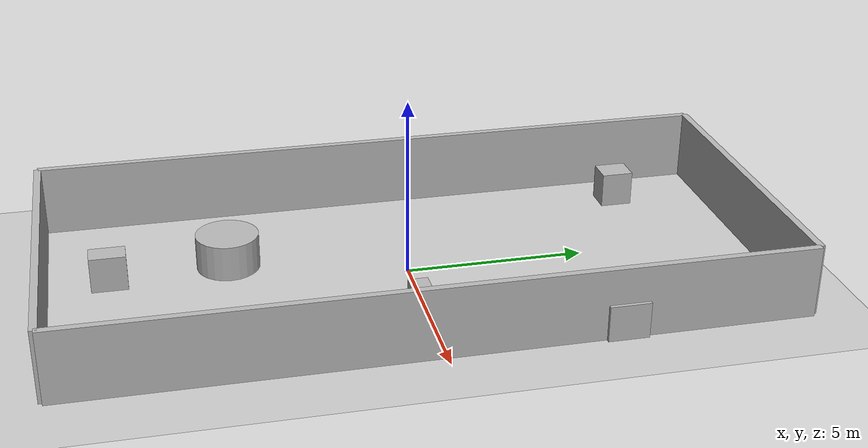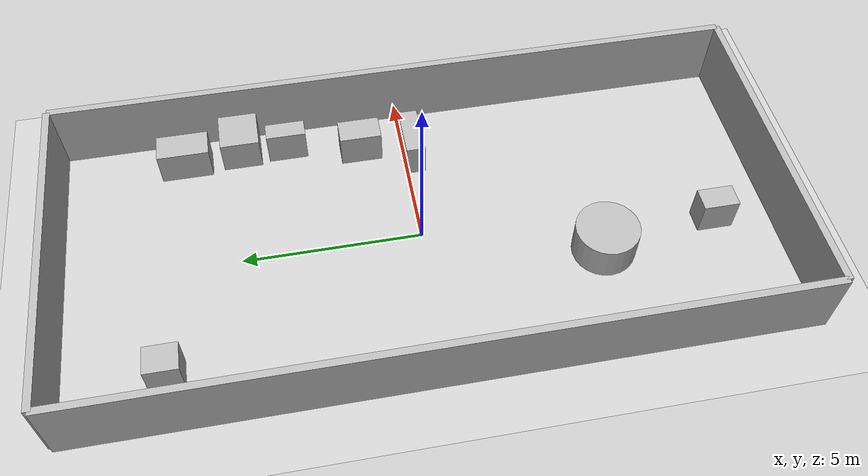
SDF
<?xml version="1.0"?>
<sdf version="1.6">
  <world name="env_78">

    <include><uri>model://ground_plane</uri></include>
    <include><uri>model://sun</uri></include>

    <!-- WALLS -->
    <model name="wall_north"><static>true</static><pose>0 9.871826061096836 1 0 0 0</pose>
      <link name="link"><collision name="collision">
        <geometry><box><size>9.239647370672266 0.2 2</size></box></geometry>
      </collision><visual name="visual">
        <geometry><box><size>9.239647370672266 0.2 2</size></box></geometry>
      </visual></link>
    </model>

    <model name="wall_south"><static>true</static><pose>0 -9.871826061096836 1 0 0 0</pose>
      <link name="link"><collision name="collision">
        <geometry><box><size>9.239647370672266 0.2 2</size></box></geometry>
      </collision><visual name="visual">
        <geometry><box><size>9.239647370672266 0.2 2</size></box></geometry>
      </visual></link>
    </model>

    <model name="wall_east"><static>true</static><pose>4.619823685336133 0 1 0 0 1.57</pose>
      <link name="link"><collision name="collision">
        <geometry><box><size>19.743652122193673 0.2 2</size></box></geometry>
      </collision><visual name="visual">
        <geometry><box><size>19.743652122193673 0.2 2</size></box></geometry>
      </visual></link>
    </model>

    <model name="wall_west"><static>true</static><pose>-4.619823685336133 0 1 0 0 1.57</pose>
      <link name="link"><collision name="collision">
        <geometry><box><size>19.743652122193673 0.2 2</size></box></geometry>
      </collision><visual name="visual">
        <geometry><box><size>19.743652122193673 0.2 2</size></box></geometry>
      </visual></link>
    </model>

    <!-- SENSOR -->

    <model name="lidar_sensor">
      <static>true</static>
      <pose>-2.9495026379560123 -7.817254220760039 0.4 0 0 0</pose>
      <link name="link">
        <sensor name="lidar" type="ray">
          <pose>0 0 0 0 0 0</pose>
          <visualize>true</visualize>
          <always_on>true</always_on>
          <update_rate>10</update_rate>
          <ray>
            <scan><horizontal>
              <samples>90</samples>
              <resolution>1</resolution>
              <min_angle>-3.14159</min_angle>
              <max_angle>3.14159</max_angle>
            </horizontal></scan>
            <range><min>0.15</min><max>20.0</max><resolution>0.01</resolution></range>
          </ray>
          <plugin name="lidar_plugin" filename="liblidar_plugin.so"/>
        </sensor>
      </link>
    </model>

    <!-- OBSTACLES -->

    <model name="obstacle_0">
      <static>true</static>
      <pose>3.02475850724763 -0.2435227063174139 0.5 0 0 0</pose>
      <link name="link">
        <collision name="collision">
          <geometry><box><size>1.5 0.54 1.0</size></box></geometry>
        </collision>
        <visual name="visual">
          <geometry><box><size>1.5 0.54 1.0</size></box></geometry>
        </visual>
      </link>
    </model>

    <model name="obstacle_1">
      <static>true</static>
      <pose>-0.9077267735363872 -8.12124651180792 0.5 0 0 0</pose>
      <link name="link">
        <collision name="collision">
          <geometry><box><size>0.65 1.0 1.0</size></box></geometry>
        </collision>
        <visual name="visual">
          <geometry><box><size>0.65 1.0 1.0</size></box></geometry>
        </visual>
      </link>
    </model>

    <model name="obstacle_2">
      <static>true</static>
      <pose>3.646399349671464 6.327479704168708 0.5 0 0 0</pose>
      <link name="link">
        <collision name="collision">
          <geometry><box><size>0.81 1.46 1.0</size></box></geometry>
        </collision>
        <visual name="visual">
          <geometry><box><size>0.81 1.46 1.0</size></box></geometry>
        </visual>
      </link>
    </model>

    <model name="obstacle_3">
      <static>true</static>
      <pose>3.710143593131077 3.371067867113176 0.5 0 0 0</pose>
      <link name="link">
        <collision name="collision">
          <geometry><box><size>0.53 1.13 1.0</size></box></geometry>
        </collision>
        <visual name="visual">
          <geometry><box><size>0.53 1.13 1.0</size></box></geometry>
        </visual>
      </link>
    </model>

    <model name="obstacle_4">
      <static>true</static>
      <pose>-3.1828955112256057 7.095738920517398 0.5 0 0 0</pose>
      <link name="link">
        <collision name="collision">
          <geometry><box><size>0.77 0.91 1.0</size></box></geometry>
        </collision>
        <visual name="visual">
          <geometry><box><size>0.77 0.91 1.0</size></box></geometry>
        </visual>
      </link>
    </model>

    <model name="obstacle_5">
      <static>true</static>
      <pose>-1.3594122395959487 -4.836180953707607 0.5 0 0 0</pose>
      <link name="link">
        <collision name="collision">
          <geometry><cylinder><radius>0.88</radius><length>1.0</length></cylinder></geometry>
        </collision>
        <visual name="visual">
          <geometry><cylinder><radius>0.88</radius><length>1.0</length></cylinder></geometry>
        </visual>
      </link>
    </model>

    <model name="obstacle_6">
      <static>true</static>
      <pose>4.090032064273419 4.7110565994231965 0.5 0 0 0</pose>
      <link name="link">
        <collision name="collision">
          <geometry><box><size>1.47 1.11 1.0</size></box></geometry>
        </collision>
        <visual name="visual">
          <geometry><box><size>1.47 1.11 1.0</size></box></geometry>
        </visual>
      </link>
    </model>

    <model name="obstacle_7">
      <static>true</static>
      <pose>3.342142551725094 1.2468332706735783 0.5 0 0 0</pose>
      <link name="link">
        <collision name="collision">
          <geometry><box><size>0.73 1.19 1.0</size></box></geometry>
        </collision>
        <visual name="visual">
          <geometry><box><size>0.73 1.19 1.0</size></box></geometry>
        </visual>
      </link>
    </model>

  </world>
</sdf>
